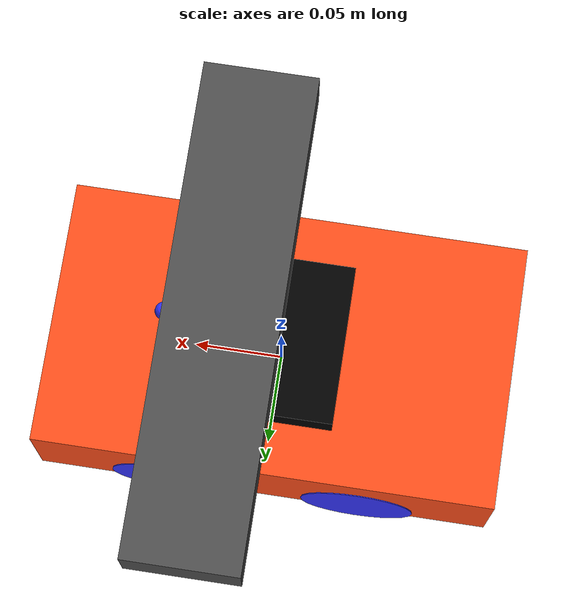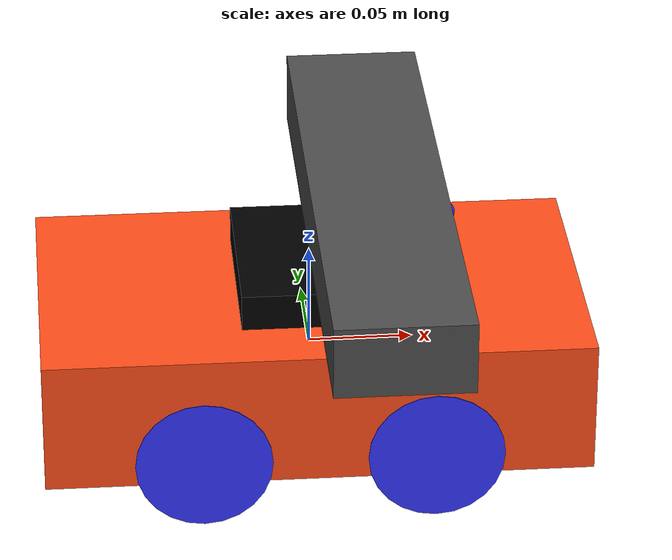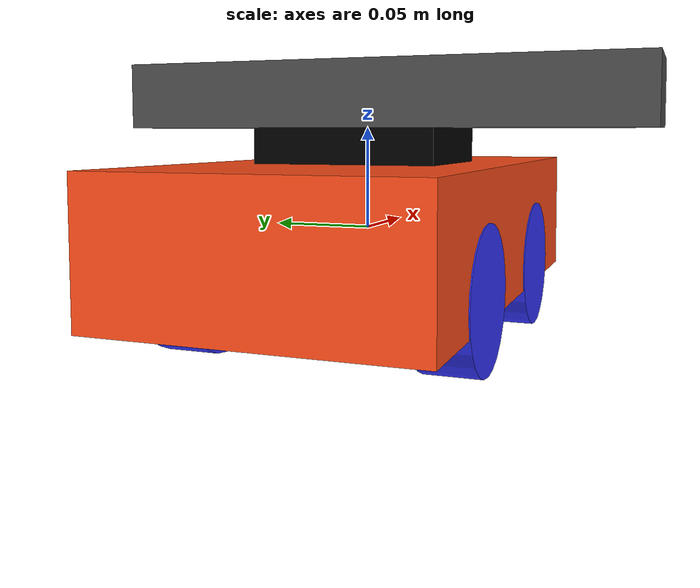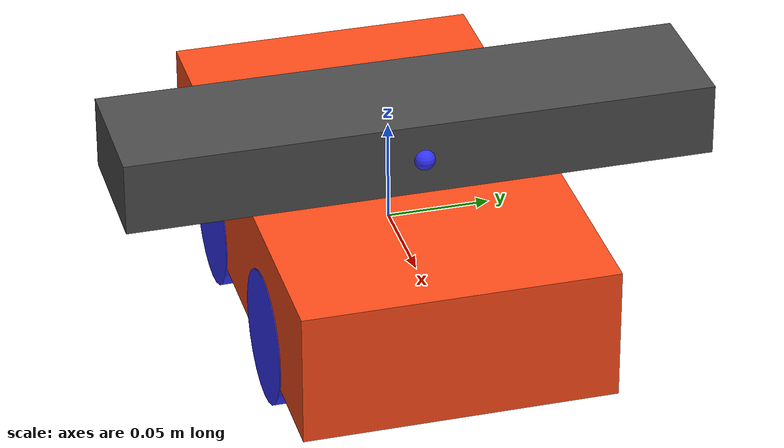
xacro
<?xml version="1.0"?>
<robot xmlns:xacro="http://www.ros.org/wiki/xacro"  name="robot">

    <xacro:arg name="use_ros2_control" default="true"/>
    <xacro:arg name="sim_mode" default="true"/>

    <xacro:include filename="robot_core.xacro" />

    <xacro:if value="$(arg use_ros2_control)">
        <xacro:include filename="ros2_control.xacro" />
    </xacro:if>
    <xacro:include filename="kinect_sensor.xacro" />

</robot>

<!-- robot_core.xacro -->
<robot xmlns:xacro="http://www.ros.org/wiki/xacro" >

    <xacro:include filename="inertial_macros.xacro"/>

    <xacro:property name="chassis_length" value="0.26"/>
    <xacro:property name="chassis_width" value="0.15"/>
    <xacro:property name="chassis_height" value="0.065"/>
    <xacro:property name="chassis_mass" value="0.5"/>

    <xacro:property name="wheel_radius" value="0.0325"/>
    <xacro:property name="wheel_thickness" value="0.026"/>
    <xacro:property name="wheel_mass" value="0.05"/>

    <xacro:property name="wheel_offset_x" value="0.055"/>

    <xacro:property name="wheel_offset_y" value="0.0625"/>
    <xacro:property name="wheel_offset_z" value="-0.0225"/>

    <material name="white"> <color rgba="1 1 1 1" /> </material>
    <material name="orange"> <color rgba="1 0.3 0.1 1"/> </material>
    <material name="blue"> <color rgba="0.2 0.2 1 1"/> </material>
    <material name="black"> <color rgba="0 0 0 1"/> </material>
    <material name="red"> <color rgba="1 0 0 1"/> </material>

    <link name="base_link"/>

    <joint name="chassis_joint" type="fixed">
        <parent link="base_link"/>
        <child link="chassis"/>
        <origin xyz="0 0 0" rpy="0 0 0"/>
    </joint>

    <link name="chassis">
        <visual>
            <origin xyz="0 0 0" rpy="0 0 0"/>
            <geometry> <box size="${chassis_length} ${chassis_width} ${chassis_height}"/> </geometry>
            <material name="orange"/>
        </visual>
        <collision>
            <origin xyz="0 0 0" rpy="0 0 0"/>
            <geometry> <box size="${chassis_length} ${chassis_width} ${chassis_height}"/> </geometry>
        </collision>
        <xacro:inertial_box mass="${chassis_mass}" x="${chassis_length}" y="${chassis_width}" z="${chassis_height}">
            <origin xyz="0 0 0" rpy="0 0 0"/>
        </xacro:inertial_box>
    </link>

    <gazebo reference="chassis"> <material>Gazebo/Orange</material> </gazebo>

    <joint name="base_footprint_joint" type="fixed">
        <parent link="base_link"/>
        <child link="base_footprint"/>

        <origin xyz="0 0 ${wheel_offset_z - wheel_radius}" rpy="0 0 0"/>
    </joint>
    <link name="base_footprint"/>

    <xacro:macro name="wheel" params="prefix side x_pos y_pos rpy_val axis_val">
        <joint name="${prefix}_${side}_wheel_joint" type="continuous">
            <parent link="base_link"/> <child link="${prefix}_${side}_wheel"/>
            <origin xyz="${x_pos} ${y_pos} ${wheel_offset_z}" rpy="${rpy_val}" />
            <axis xyz="${axis_val}"/>
        </joint>
        <link name="${prefix}_${side}_wheel">
            <visual>
                <geometry><cylinder radius="${wheel_radius}" length="${wheel_thickness}"/></geometry>
                <material name="blue"/>
            </visual>
            <collision>
                <geometry><cylinder radius="${wheel_radius}" length="${wheel_thickness}"/></geometry>

            </collision>
            <xacro:inertial_cylinder mass="${wheel_mass}" length="${wheel_thickness}" radius="${wheel_radius}">
                <origin xyz="0 0 0" rpy="0 0 0"/>
            </xacro:inertial_cylinder>
        </link>
        <gazebo reference="${prefix}_${side}_wheel">
            <material>Gazebo/Red</material>

            <mu1>1.0</mu1>
            <mu2>0.2</mu2>
        </gazebo>
    </xacro:macro>

    <xacro:wheel prefix="front" side="left"  x_pos="${wheel_offset_x}" y_pos="${wheel_offset_y}"  rpy_val="-${pi/2} 0 0" axis_val="0 0 1"/>
    <xacro:wheel prefix="front" side="right" x_pos="${wheel_offset_x}" y_pos="-${wheel_offset_y}" rpy_val="${pi/2} 0 0"  axis_val="0 0 -1"/>
    <xacro:wheel prefix="rear"  side="left"  x_pos="-${wheel_offset_x}" y_pos="${wheel_offset_y}"  rpy_val="-${pi/2} 0 0" axis_val="0 0 1"/>
    <xacro:wheel prefix="rear"  side="right" x_pos="-${wheel_offset_x}" y_pos="-${wheel_offset_y}" rpy_val="${pi/2} 0 0"  axis_val="0 0 -1"/>

</robot>

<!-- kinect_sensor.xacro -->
<robot xmlns:xacro="http://www.ros.org/wiki/xacro">

    <xacro:property name="kinect_base_width" value="0.09"/>
    <xacro:property name="kinect_base_length" value="0.07"/>
    <xacro:property name="kinect_base_height" value="0.03"/>
    <xacro:property name="kinect_base_mass" value="0.2"/>

    <xacro:property name="kinect_head_width" value="0.28"/>
    <xacro:property name="kinect_head_length" value="0.065"/>
    <xacro:property name="kinect_head_height" value="0.035"/>
    <xacro:property name="kinect_head_mass" value="0.05"/>

    <xacro:property name="kinect_mount_x" value="0.0"/>
    <xacro:property name="kinect_mount_y" value="0.0"/>
    <xacro:property name="kinect_mount_z" value="0.02"/>
    <xacro:property name="kinect_mount_roll" value="0.0"/>
    <xacro:property name="kinect_mount_pitch" value="0.0"/>
    <xacro:property name="kinect_mount_yaw" value="0.0"/>

    <xacro:property name="tilt_joint_lower_limit" value="${-pi/4}"/>
    <xacro:property name="tilt_joint_upper_limit" value="${pi/6}"/>
    <xacro:property name="tilt_joint_velocity_limit" value="1.0"/>
    <xacro:property name="tilt_joint_effort_limit" value="10.0"/>

    <joint name="kinect_base_mount_joint" type="fixed">
        <parent link="chassis"/>
        <child link="kinect_base_link"/>
        <origin xyz="${kinect_mount_x} ${kinect_mount_y} ${kinect_mount_z}"
                rpy="${kinect_mount_roll} ${kinect_mount_pitch} ${kinect_mount_yaw}"/>
    </joint>

    <link name="kinect_base_link">
        <visual>
            <origin xyz="0 0 ${kinect_base_height/2}" rpy="0 0 0"/>
            <geometry>
                <box size="${kinect_base_length} ${kinect_base_width} ${kinect_base_height}"/>
            </geometry>
            <material name="black"/>
        </visual>
        <collision>
            <origin xyz="0 0 ${kinect_base_height/2}" rpy="0 0 0"/>
            <geometry>
                <box size="${kinect_base_length} ${kinect_base_width} ${kinect_base_height}"/>
            </geometry>
        </collision>
        <xacro:inertial_box mass="${kinect_base_mass}"
                            x="${kinect_base_length}" y="${kinect_base_width}" z="${kinect_base_height}">
            <origin xyz="0 0 ${kinect_base_height/2}" rpy="0 0 0"/>
        </xacro:inertial_box>
    </link>
    <gazebo reference="kinect_base_link">
        <material>Gazebo/Black</material>
    </gazebo>

    <joint name="kinect_tilt_joint" type="revolute">
        <parent link="kinect_base_link"/>
        <child link="kinect_tilt_head_link"/>

        <origin xyz="0 0 ${kinect_base_height}" rpy="0 0 0"/>
        <axis xyz="0 1 0"/>
        <limit lower="${tilt_joint_lower_limit}" upper="${tilt_joint_upper_limit}"
               effort="${tilt_joint_effort_limit}" velocity="${tilt_joint_velocity_limit}"/>
        <dynamics damping="0.1" friction="0.1"/>
    </joint>

    <link name="kinect_tilt_head_link">
        <visual>

            <origin xyz="${kinect_head_length/2} 0 ${kinect_head_height/2}" rpy="0 0 0"/>
            <geometry>
                <box size="${kinect_head_length} ${kinect_head_width} ${kinect_head_height}"/>
            </geometry>
            <material name="dark_grey">
                <color rgba="0.3 0.3 0.3 1"/>
            </material>
        </visual>
        <collision>
            <origin xyz="${kinect_head_length/2} 0 ${kinect_head_height/2}" rpy="0 0 0"/>
            <geometry>
                <box size="${kinect_head_length} ${kinect_head_width} ${kinect_head_height}"/>
            </geometry>
        </collision>
        <xacro:inertial_box mass="${kinect_head_mass}"
                            x="${kinect_head_length}" y="${kinect_head_width}" z="${kinect_head_height}">
            <origin xyz="${kinect_head_length/2} 0 ${kinect_head_height/2}" rpy="0 0 0"/>
        </xacro:inertial_box>
    </link>
    <gazebo reference="kinect_tilt_head_link">
        <material>Gazebo/DarkGrey</material>
    </gazebo>

    <joint name="kinect_depth_sensor_joint" type="fixed">
        <parent link="kinect_tilt_head_link"/>
        <child link="kinect_depth_sensor_link"/>

        <origin xyz="${kinect_head_length} 0 ${kinect_head_height/2}" rpy="0 0 0"/>
    </joint>

    <link name="kinect_depth_sensor_link">

        <visual>
            <geometry><sphere radius="0.005"/></geometry>
            <material name="blue"/>
        </visual>
    </link>

    <joint name="kinect_depth_sensor_optical_joint" type="fixed">
        <parent link="kinect_depth_sensor_link"/>
        <child link="kinect_depth_sensor_optical_link"/>
        <origin xyz="0 0 0" rpy="${-pi/2} 0 ${-pi/2}"/>
    </joint>

    <link name="kinect_depth_sensor_optical_link"/>

    <gazebo reference="kinect_depth_sensor_link">
        <sensor name="kinect_depth_camera" type="depth">
            <pose> 0 0 0 0 0 0 </pose>
            <visualize>true</visualize>
            <update_rate>10</update_rate>
            <camera name="kinect_camera_sensor_name">
                <horizontal_fov>1.089</horizontal_fov>
                <image>
                    <format>B8G8R8</format>
                    <width>640</width>
                    <height>480</height>
                </image>
                <clip>
                    <near>0.05</near>
                    <far>8.0</far>
                </clip>
                <depth_camera>

                </depth_camera>
            </camera>
            <plugin name="kinect_depth_camera_controller" filename="libgazebo_ros_camera.so">
                <ros>
                    <namespace>/kinect</namespace>
                    <remapping>image_raw:=depth/image_raw</remapping>
                    <remapping>camera_info:=depth/camera_info</remapping>
                    <remapping>points:=depth/points</remapping>
                </ros>
                <camera_name>kinect_depth</camera_name>
                <frame_name>kinect_depth_sensor_optical_link</frame_name>
                <hack_baseline>0.0</hack_baseline>
                <min_depth>0.1</min_depth>
                <max_depth>10.0</max_depth>

            </plugin>
        </sensor>
    </gazebo>

</robot>
